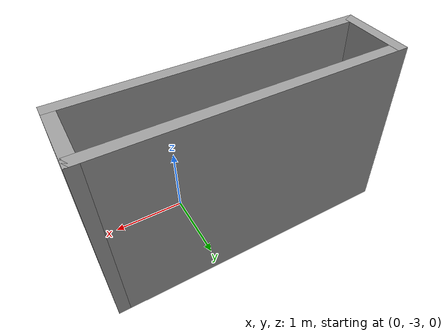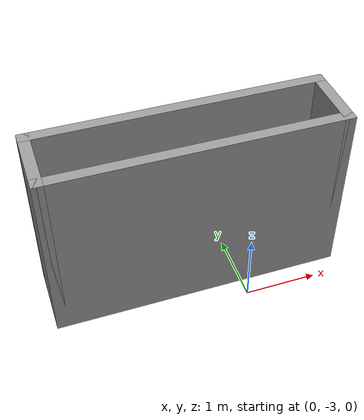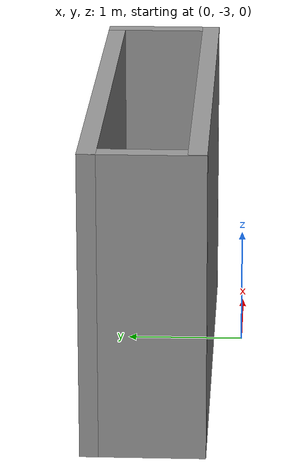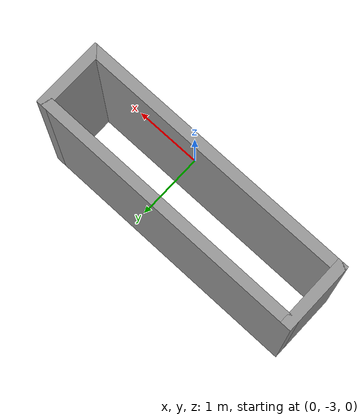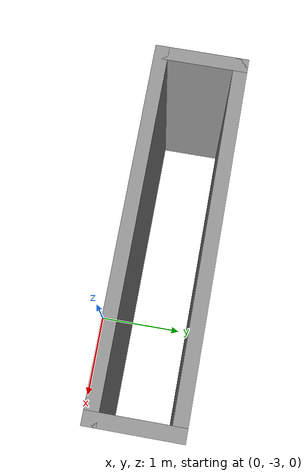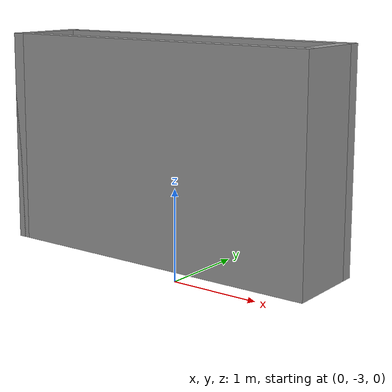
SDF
<?xml version='1.0'?>
<sdf version='1.7'>
  <model name='box4m'>
    <pose>-0.605 -1.3775 0 0 -0 0</pose>
    <link name='Wall_0'>
      <collision name='Wall_0_Collision'>
        <geometry>
          <box>
            <size>1 0.15 2.5</size>
          </box>
        </geometry>
        <pose>0 0 1.25 0 -0 0</pose>
      </collision>
      <visual name='Wall_0_Visual'>
        <pose>0 0 1.25 0 -0 0</pose>
        <geometry>
          <box>
            <size>1 0.15 2.5</size>
          </box>
        </geometry>
        <material>
          <script>
            <uri>file://media/materials/scripts/gazebo.material</uri>
            <name>Gazebo/Grey</name>
          </script>
          <ambient>1 1 1 1</ambient>
        </material>
        <meta>
          <layer>0</layer>
        </meta>
      </visual>
      <pose>-1.925 -0.8775 0 0 -0 -1.5708</pose>
    </link>
    <link name='Wall_1'>
      <collision name='Wall_1_Collision'>
        <geometry>
          <box>
            <size>4 0.15 2.5</size>
          </box>
        </geometry>
        <pose>0 0 1.25 0 -0 0</pose>
      </collision>
      <visual name='Wall_1_Visual'>
        <pose>0 0 1.25 0 -0 0</pose>
        <geometry>
          <box>
            <size>4 0.15 2.5</size>
          </box>
        </geometry>
        <material>
          <script>
            <uri>file://media/materials/scripts/gazebo.material</uri>
            <name>Gazebo/Grey</name>
          </script>
          <ambient>1 1 1 1</ambient>
        </material>
        <meta>
          <layer>0</layer>
        </meta>
      </visual>
      <pose>-0 -1.3025 0 0 -0 0</pose>
    </link>
    <link name='Wall_2'>
      <collision name='Wall_2_Collision'>
        <geometry>
          <box>
            <size>1 0.15 2.5</size>
          </box>
        </geometry>
        <pose>0 0 1.25 0 -0 0</pose>
      </collision>
      <visual name='Wall_2_Visual'>
        <pose>0 0 1.25 0 -0 0</pose>
        <geometry>
          <box>
            <size>1 0.15 2.5</size>
          </box>
        </geometry>
        <material>
          <script>
            <uri>file://media/materials/scripts/gazebo.material</uri>
            <name>Gazebo/Grey</name>
          </script>
          <ambient>1 1 1 1</ambient>
        </material>
        <meta>
          <layer>0</layer>
        </meta>
      </visual>
      <pose>1.925 -0.8775 0 0 -0 1.5708</pose>
    </link>
    <link name='Wall_3'>
      <collision name='Wall_3_Collision'>
        <geometry>
          <box>
            <size>4 0.15 2.5</size>
          </box>
        </geometry>
        <pose>0 0 1.25 0 -0 0</pose>
      </collision>
      <visual name='Wall_3_Visual'>
        <pose>0 0 1.25 0 -0 0</pose>
        <geometry>
          <box>
            <size>4 0.15 2.5</size>
          </box>
        </geometry>
        <material>
          <script>
            <uri>file://media/materials/scripts/gazebo.material</uri>
            <name>Gazebo/Grey</name>
          </script>
          <ambient>1 1 1 1</ambient>
        </material>
        <meta>
          <layer>0</layer>
        </meta>
      </visual>
      <pose>-0 -0.4525 0 0 -0 3.14159</pose>
    </link>
    <static>1</static>
  </model>
</sdf>
